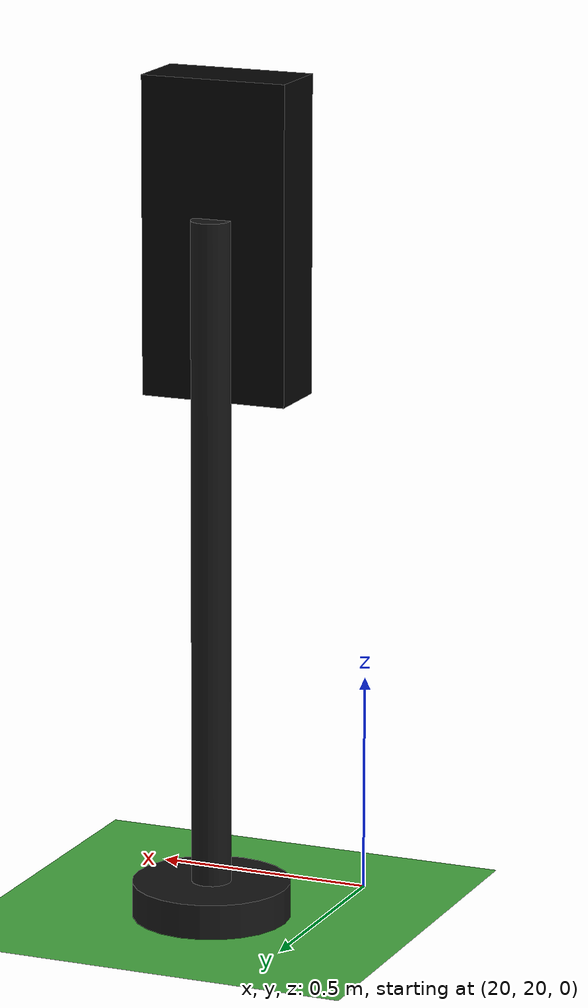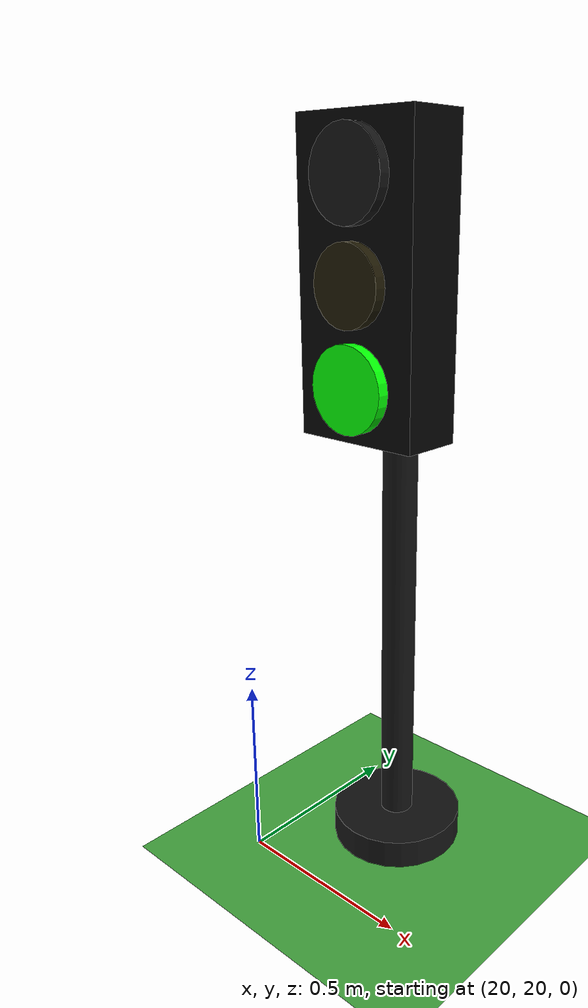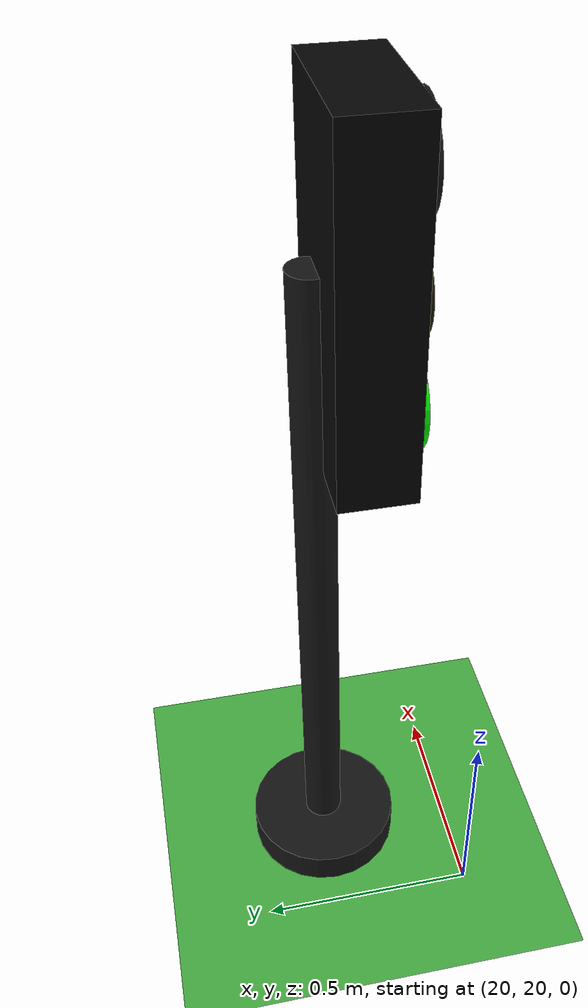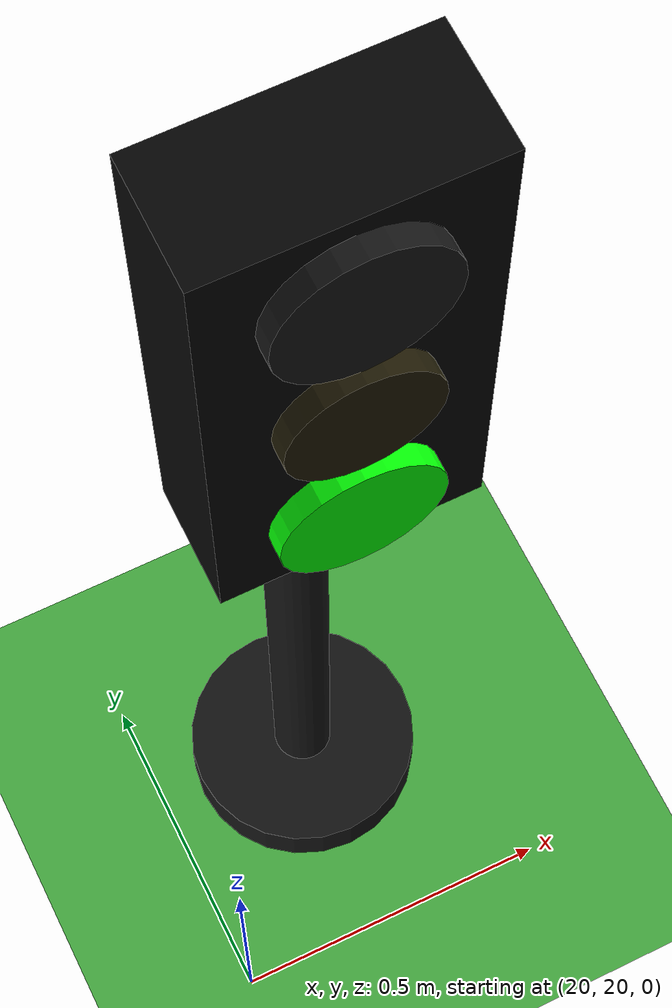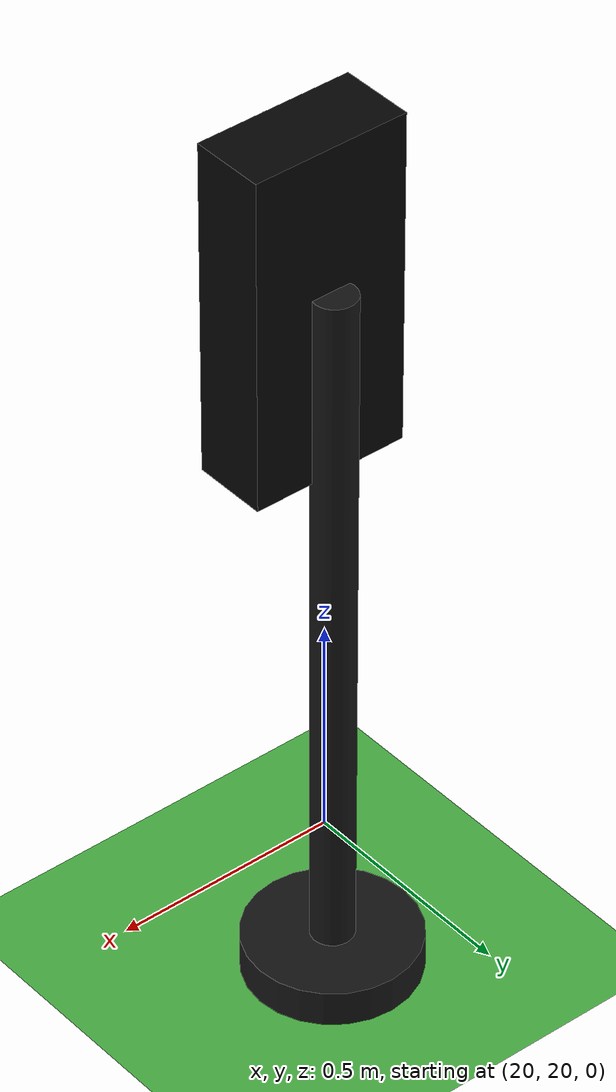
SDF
<sdf version="1.10">
 <world name="city_second">
  <model name="ground_plane">
   <static>true</static>
   <link name="link">
    <collision name="collision">
     <geometry><plane><normal>0 0 1</normal><size>300 300</size></plane></geometry>
    </collision>
    <visual name="visual">
     <geometry><plane><normal>0 0 1</normal><size>300 300</size></plane></geometry>
     <material>
      <ambient>0.280000001 0.689999998 0.25999999 1</ambient>
      <diffuse>0.280000001 0.689999998 0.25999999 1</diffuse>
      <specular>0.0299999993 0.0299999993 0.0299999993 1</specular>
     </material>
    </visual>
    <inertial>
     <mass>1</mass>
     <inertia><ixx>1</ixx><ixy>0</ixy><ixz>0</ixz><iyy>1</iyy><iyz>0</iyz><izz>1</izz></inertia>
    </inertial>
   </link>
  </model>
  <model name="simple_traffic_light_green_south_1_4">
   <static>true</static>
   <pose>20.244171088902196 20.318303018174145 0 0 0 -3.1415900000000754</pose>
   <link name="base">
    <pose>0 0 0.040000000000000001 0 0 0</pose>
    <collision name="collision">
     <geometry>
      <cylinder><radius>0.17999999999999999</radius><length>0.080000000000000002</length></cylinder>
     </geometry>
    </collision>
    <visual name="visual">
     <geometry>
      <cylinder><radius>0.17999999999999999</radius><length>0.080000000000000002</length></cylinder>
     </geometry>
     <material>
      <ambient>0.0799999982 0.0799999982 0.0799999982 1</ambient>
      <diffuse>0.0799999982 0.0799999982 0.0799999982 1</diffuse>
      <specular>0.150000006 0.150000006 0.150000006 1</specular>
      <emissive>0 0 0 1</emissive>
     </material>
    </visual>
   </link>
   <link name="pole">
    <pose>0 0 0.80000000000000004 0 0 0</pose>
    <collision name="collision">
     <geometry>
      <cylinder><radius>0.044999999999999998</radius><length>1.6000000000000001</length></cylinder>
     </geometry>
    </collision>
    <visual name="visual">
     <geometry>
      <cylinder><radius>0.044999999999999998</radius><length>1.6000000000000001</length></cylinder>
     </geometry>
     <material>
      <ambient>0.0799999982 0.0799999982 0.0799999982 1</ambient>
      <diffuse>0.0799999982 0.0799999982 0.0799999982 1</diffuse>
      <specular>0.150000006 0.150000006 0.150000006 1</specular>
      <emissive>0 0 0 1</emissive>
     </material>
    </visual>
   </link>
   <link name="signal_box">
    <pose>0 0.089999999999999997 1.55 0 0 0</pose>
    <collision name="collision">
     <geometry><box><size>0.34000000000000002 0.16 0.71999999999999997</size></box></geometry>
    </collision>
    <visual name="visual">
     <geometry><box><size>0.34000000000000002 0.16 0.71999999999999997</size></box></geometry>
     <material>
      <ambient>0.0199999996 0.0199999996 0.0199999996 1</ambient>
      <diffuse>0.0199999996 0.0199999996 0.0199999996 1</diffuse>
      <specular>0.150000006 0.150000006 0.150000006 1</specular>
      <emissive>0 0 0 1</emissive>
     </material>
    </visual>
   </link>
   <link name="red_lens">
    <pose>0 0.18099999999999999 1.78 1.5707963268 0 0</pose>
    <collision name="collision">
     <geometry><cylinder><radius>0.105</radius><length>0.035000000000000003</length></cylinder></geometry>
    </collision>
    <visual name="visual">
     <geometry><cylinder><radius>0.105</radius><length>0.035000000000000003</length></cylinder></geometry>
     <material>
      <ambient>0.0799999982 0.0799999982 0.0799999982 1</ambient>
      <diffuse>0.0799999982 0.0799999982 0.0799999982 1</diffuse>
      <specular>0.150000006 0.150000006 0.150000006 1</specular>
      <emissive>0 0 0 1</emissive>
     </material>
    </visual>
   </link>
   <link name="yellow_lens">
    <pose>0 0.182 1.55 1.5707963268 0 0</pose>
    <collision name="collision">
     <geometry>
      <cylinder><radius>0.095000000000000001</radius><length>0.035000000000000003</length></cylinder>
     </geometry>
    </collision>
    <visual name="visual">
     <geometry>
      <cylinder><radius>0.095000000000000001</radius><length>0.035000000000000003</length></cylinder>
     </geometry>
     <material>
      <ambient>0.119999997 0.100000001 0.0199999996 1</ambient>
      <diffuse>0.119999997 0.100000001 0.0199999996 1</diffuse>
      <specular>0.150000006 0.150000006 0.150000006 1</specular>
      <emissive>0 0 0 1</emissive>
     </material>
    </visual>
   </link>
   <link name="green_lens">
    <pose>0 0.183 1.3200000000000001 1.5707963268 0 0</pose>
    <collision name="collision">
     <geometry><cylinder><radius>0.105</radius><length>0.035000000000000003</length></cylinder></geometry>
    </collision>
    <visual name="visual">
     <geometry><cylinder><radius>0.105</radius><length>0.035000000000000003</length></cylinder></geometry>
     <material>
      <ambient>0.0199999996 1 0.0199999996 1</ambient>
      <diffuse>0.0199999996 1 0.0199999996 1</diffuse>
      <specular>0.150000006 0.150000006 0.150000006 1</specular>
      <emissive>0.0199999996 1 0.0199999996 1</emissive>
     </material>
    </visual>
   </link>
   <light name="green_glow" type="point">
    <pose>0 0.28 1.32 0 0 0</pose>
    <diffuse>0.02 1 0.02 1</diffuse>
    <specular>0.02 1 0.02 1</specular>
    <attenuation>
     <range>3.0</range>
     <constant>0.8</constant>
     <linear>0.15</linear>
     <quadratic>0.02</quadratic>
    </attenuation>
    <cast_shadows>false</cast_shadows>
   </light>
  </model>
 </world>
</sdf>
